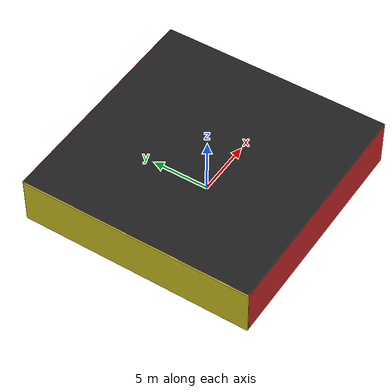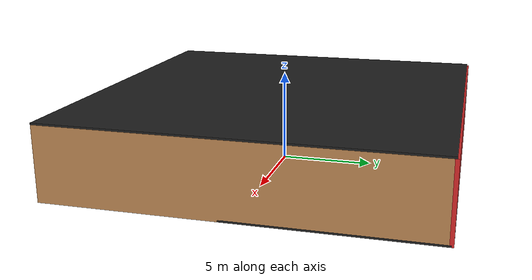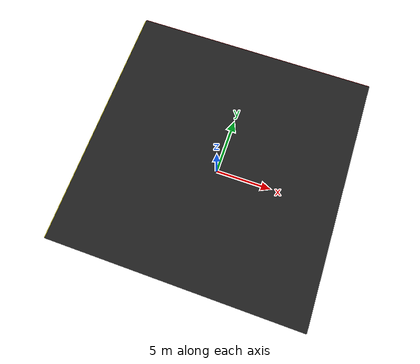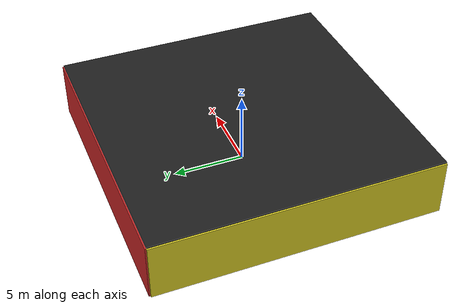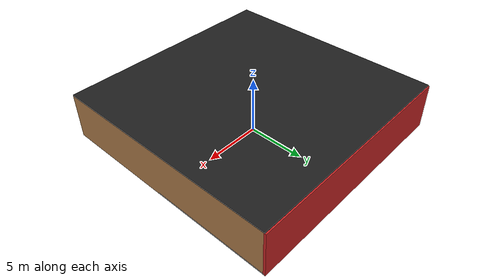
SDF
<sdf version="1.4">
 <world name="default">
  <physics type="ode">
   <max_step_size>0.001</max_step_size>
   <real_time_factor>1</real_time_factor>
   <real_time_update_rate>1000</real_time_update_rate>
   <gravity>0 0 -9.8</gravity>
  </physics>
  <scene><ambient>0.4 0.4 0.4 1</ambient><background>0.7 0.7 0.7 1</background><shadows>1</shadows></scene>
  <model name="Surrounding">
   <static>1</static>
   <link name="Ceiling">
    <collision name="Ceiling_Collision"><geometry><box><size>20 20 0.1</size></box></geometry></collision>
    <visual name="Ceiling_Visual">
     <geometry><box><size>20 20 0.1</size></box></geometry>
     <material>
      <script><uri>file://media/materials/scripts/gazebo.material</uri><name>Gazebo/Black</name></script>
     </material>
    </visual>
    <pose>0 0 4.05 0 0 0</pose>
   </link>
   <link name="Wall_South">
    <collision name="Wall_South_Collision">
     <geometry><box><size>20 0 4</size></box></geometry>
     <pose>0 0 2 0 -0 0</pose>
    </collision>
    <visual name="Wall_South_Visual">
     <pose>0 0 2 0 -0 0</pose>
     <geometry><box><size>20 0 4</size></box></geometry>
     <material>
      <script><uri>file://media/materials/scripts/gazebo.material</uri><name>Gazebo/RedBright</name></script>
     </material>
    </visual>
    <velocity_decay><linear>0</linear><angular>0</angular></velocity_decay>
    <pose>0 -10 0 0 -0 0</pose>
   </link>
   <link name="Wall_East">
    <collision name="Wall_21_Collision">
     <geometry><box><size>20 0 4</size></box></geometry>
     <pose>0 0 2 0 -0 0</pose>
    </collision>
    <visual name="Wall_21_Visual">
     <pose>0 0 2 0 -0 0</pose>
     <geometry><box><size>20 0 4</size></box></geometry>
     <material>
      <script><uri>file://media/materials/scripts/gazebo.material</uri><name>Gazebo/WoodPallet</name></script>
     </material>
    </visual>
    <velocity_decay><linear>0</linear><angular>0</angular></velocity_decay>
    <pose>10 0 0 0 -0 1.5708</pose>
   </link>
   <link name="Wall_North">
    <collision name="Wall_22_Collision">
     <geometry><box><size>20 0.2 4</size></box></geometry>
     <pose>0 0 2 0 -0 0</pose>
    </collision>
    <visual name="Wall_22_Visual">
     <pose>0 0 2 0 -0 0</pose>
     <geometry><box><size>20 0.2 4</size></box></geometry>
     <material>
      <script><uri>file://media/materials/scripts/gazebo.material</uri><name>Gazebo/Red</name></script>
     </material>
    </visual>
    <velocity_decay><linear>0</linear><angular>0</angular></velocity_decay>
    <pose>0 10 0 0 -0 0</pose>
   </link>
   <link name="Wall_West">
    <collision name="Wall_23_Collision">
     <geometry><box><size>20 0.2 4</size></box></geometry>
     <pose>0 0 2 0 -0 0</pose>
    </collision>
    <visual name="Wall_23_Visual">
     <pose>0 0 2 0 -0 0</pose>
     <geometry><box><size>20 0.2 4</size></box></geometry>
     <material>
      <script><uri>file://media/materials/scripts/gazebo.material</uri><name>Gazebo/YellowGlow</name></script>
     </material>
    </visual>
    <velocity_decay><linear>0</linear><angular>0</angular></velocity_decay>
    <pose>-10 0 0 0 0 -1.5708</pose>
   </link>
   <link name="Ground_link">
    <collision name="collision">
     <pose>0 0 .05 0 -0 0</pose>
     <geometry><box><size>20 20 0.1</size></box></geometry>
    </collision>
    <visual name="visual">
     <pose>0 0 .05 0 -0 0</pose>
     <geometry><box><size>20 20 0.1</size></box></geometry>
     <material>
      <script><uri>file://media/materials/scripts/gazebo.material</uri><name>Gazebo/FlatBlack</name></script>
     </material>
    </visual>
   </link>
   <static>1</static>
  </model>
  <spherical_coordinates>
   <surface_model>EARTH_WGS84</surface_model>
   <latitude_deg>0</latitude_deg>
   <longitude_deg>0</longitude_deg>
   <elevation>0</elevation>
   <heading_deg>0</heading_deg>
  </spherical_coordinates>
  <light name="lightball_0" type="diffuse">
   <diffuse>0.8 0.8 0.8 1</diffuse>
   <specular>0.2 0.2 0.2 1</specular>
   <attenuation>
    <range>100</range>
    <constant>0.7</constant>
    <linear>0.01</linear>
    <quadratic>0.001</quadratic>
   </attenuation>
   <direction>-0.5 0.1 -0.9</direction>
   <pose>3.45730732843 9.93130286578 2.26581746929 0 0 0</pose>
  </light>
  <light name="lightball_1" type="diffuse">
   <diffuse>0.8 0.8 0.8 1</diffuse>
   <specular>0.2 0.2 0.2 1</specular>
   <attenuation>
    <range>100</range>
    <constant>0.7</constant>
    <linear>0.01</linear>
    <quadratic>0.001</quadratic>
   </attenuation>
   <direction>-0.5 0.1 -0.9</direction>
   <pose>2.98170413475 3.74658145644 2.33217303018 0 0 0</pose>
  </light>
  <light name="lightball_2" type="diffuse">
   <diffuse>0.8 0.8 0.8 1</diffuse>
   <specular>0.2 0.2 0.2 1</specular>
   <attenuation>
    <range>100</range>
    <constant>0.7</constant>
    <linear>0.01</linear>
    <quadratic>0.001</quadratic>
   </attenuation>
   <direction>-0.5 0.1 -0.9</direction>
   <pose>-6.26734065523 3.34121659946 1.12562317553 0 0 0</pose>
  </light>
  <light name="lightball_3" type="diffuse">
   <diffuse>0.8 0.8 0.8 1</diffuse>
   <specular>0.2 0.2 0.2 1</specular>
   <attenuation>
    <range>100</range>
    <constant>0.7</constant>
    <linear>0.01</linear>
    <quadratic>0.001</quadratic>
   </attenuation>
   <direction>-0.5 0.1 -0.9</direction>
   <pose>9.94540846969 -4.74991918328 1.12899844204 0 0 0</pose>
  </light>
  <light name="lightball_4" type="diffuse">
   <diffuse>0.8 0.8 0.8 1</diffuse>
   <specular>0.2 0.2 0.2 1</specular>
   <attenuation>
    <range>100</range>
    <constant>0.7</constant>
    <linear>0.01</linear>
    <quadratic>0.001</quadratic>
   </attenuation>
   <direction>-0.5 0.1 -0.9</direction>
   <pose>8.26779837861 6.13522759544 3.80140104424 0 0 0</pose>
  </light>
  <light name="lightball_5" type="diffuse">
   <diffuse>0.8 0.8 0.8 1</diffuse>
   <specular>0.2 0.2 0.2 1</specular>
   <attenuation>
    <range>100</range>
    <constant>0.7</constant>
    <linear>0.01</linear>
    <quadratic>0.001</quadratic>
   </attenuation>
   <direction>-0.5 0.1 -0.9</direction>
   <pose>-6.66774059203 5.37168570353 2.92972197482 0 0 0</pose>
  </light>
  <include><uri>model://cabinet</uri><pose>-7.26673327405 -7.64912603454 0 0 0 0.199404284374</pose></include>
  <include>
   <uri>model://robocup_3Dsim_goal</uri>
   <pose>-4.25913313795 -1.8919771603 0 0 0 2.90931945264</pose>
  </include>
  <include><uri>model://cabinet</uri><pose>4.19303958363 8.07399119632 0 0 0 2.53679130036</pose></include>
 </world>
</sdf>

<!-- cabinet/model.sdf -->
<sdf version="1.5">
  <model name="cabinet">
    <static>true</static>
    <link name="cabinet_bottom_plate">
      <inertial>
        <pose>0 0 -1 0 0 0</pose>
        <inertia>
          <ixx>2.050000</ixx>
          <ixy>0</ixy>
          <ixz>0</ixz>
          <iyy>2.050000</iyy>
          <iyz>0</iyz>
          <izz>2.050000</izz>
        </inertia>
        <mass>25.000000</mass>
      </inertial>
      <collision name="cabinet_bottom_plate_geom">
        <pose>0 0 0.010000 0 0 0</pose>
        <geometry>
          <box>
            <size>0.450000 0.450000 0.020000</size>
          </box>
        </geometry>
      </collision>
      <visual name="cabinet_bottom_plate_geom_visual">
        <pose>0 0 0.010000 0 0 0</pose>
        <geometry>
          <box>
            <size>0.450000 0.450000 0.020000</size>
          </box>
        </geometry>
        <material>
          <script>
            <uri>model://media/materials/scripts/gazebo.material</uri>
            <name>Gazebo/Wood</name>
          </script>
        </material>
      </visual>
      <collision name="cabinet_bottom_plate_geom_cabinet_back_plate">
        <pose>0.235000 0 0.510000 0 0 0</pose>
        <geometry>
          <box>
            <size>0.020000 0.450000 1.020000</size>
          </box>
        </geometry>
      </collision>
      <visual name="cabinet_bottom_plate_geom_cabinet_back_plate_visual">
        <pose>0.235000 0 0.510000 0 0 0</pose>
        <geometry>
          <box>
            <size>0.020000 0.450000 1.020000</size>
          </box>
        </geometry>
        <material>
          <script>
            <uri>model://media/materials/scripts/gazebo.material</uri>
            <name>Gazebo/Wood</name>
          </script>
        </material>
      </visual>
      <collision name="cabinet_bottom_plate_geom_cabinet_left_plate">
        <pose>0 0.235000 0.510000 0 0 0</pose>
        <geometry>
          <box>
            <size>0.450000 0.020000 1.020000</size>
          </box>
        </geometry>
      </collision>
      <visual name="cabinet_bottom_plate_geom_cabinet_left_plate_visual">
        <pose>0 0.235000 0.510000 0 0 0</pose>
        <geometry>
          <box>
            <size>0.450000 0.020000 1.020000</size>
          </box>
        </geometry>
        <material>
          <script>
            <uri>model://media/materials/scripts/gazebo.material</uri>
            <name>Gazebo/Wood</name>
          </script>
        </material>
      </visual>
      <collision name="cabinet_bottom_plate_geom_cabinet_middle_plate">
        <pose>0 0 0.510000 0 0 0</pose>
        <geometry>
          <box>
            <size>0.450000 0.450000 0.020000</size>
          </box>
        </geometry>
      </collision>
      <visual name="cabinet_bottom_plate_geom_cabinet_middle_plate_visual">
        <pose>0 0 0.510000 0 0 0</pose>
        <geometry>
          <box>
            <size>0.450000 0.450000 0.020000</size>
          </box>
        </geometry>
        <material>
          <script>
            <uri>model://media/materials/scripts/gazebo.material</uri>
            <name>Gazebo/Wood</name>
          </script>
        </material>
      </visual>
      <collision name="cabinet_bottom_plate_geom_cabinet_right_plate">
        <pose>0 -0.235000 0.510000 0 0 0</pose>
        <geometry>
          <box>
            <size>0.450000 0.020000 1.020000</size>
          </box>
        </geometry>
      </collision>
      <visual name="cabinet_bottom_plate_geom_cabinet_right_plate_visual">
        <pose>0 -0.235000 0.510000 0 0 0</pose>
        <geometry>
          <box>
            <size>0.450000 0.020000 1.020000</size>
          </box>
        </geometry>
        <material>
          <script>
            <uri>model://media/materials/scripts/gazebo.material</uri>
            <name>Gazebo/Wood</name>
          </script>
        </material>
      </visual>
      <collision name="cabinet_bottom_plate_geom_cabinet_top_plate">
        <pose>0 0 1.010000 0 0 0</pose>
        <geometry>
          <box>
            <size>0.450000 0.450000 0.020000</size>
          </box>
        </geometry>
      </collision>
      <visual name="cabinet_bottom_plate_geom_cabinet_top_plate_visual">
        <pose>0 0 1.010000 0 0 0</pose>
        <geometry>
          <box>
            <size>0.450000 0.450000 0.020000</size>
          </box>
        </geometry>
        <material>
          <script>
            <uri>model://media/materials/scripts/gazebo.material</uri>
            <name>Gazebo/Wood</name>
          </script>
        </material>
      </visual>
    </link>
  </model>
</sdf>

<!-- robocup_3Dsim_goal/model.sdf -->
<sdf version="1.5">
  <model name="robocup_3d_goal">
    <static>true</static>
    <link name="left_post">
      <pose>0 1.05 0.45 0 0 0</pose>
      <collision name="collision">
        <geometry>
          <cylinder>
            <radius>0.05</radius>
            <length>0.9</length>
          </cylinder>
        </geometry>
      </collision>
      <visual name="visual">
        <geometry>
          <cylinder>
            <radius>0.05</radius>
            <length>0.9</length>
          </cylinder>
        </geometry>
        <material>
          <script>
            <uri>file://media/materials/scripts/gazebo.material</uri>
            <name>Gazebo/ZincYellow</name>
          </script>
        </material>
      </visual>
    </link>
    <link name="left_support_horiz_lower">
      <pose>0.30 1.05 0.01 0 0 0</pose>
      <collision name="collision">
        <geometry>
          <box>
            <size>0.50 0.02 0.02</size>
          </box>
        </geometry>
      </collision>
      <visual name="visual">
        <geometry>
          <box>
            <size>0.50 0.02 0.02</size>
          </box>
        </geometry>
        <material>
          <script>
            <uri>file://media/materials/scripts/gazebo.material</uri>
            <name>Gazebo/White</name>
          </script>
        </material>
      </visual>
    </link>
    <link name="left_support_horiz_upper">
      <pose>0.30 1.05 0.79 0 0 0</pose>
      <collision name="collision">
        <geometry>
          <box>
            <size>0.50 0.02 0.02</size>
          </box>
        </geometry>
      </collision>
      <visual name="visual">
        <geometry>
          <box>
            <size>0.50 0.02 0.02</size>
          </box>
        </geometry>
        <material>
          <script>
            <uri>file://media/materials/scripts/gazebo.material</uri>
            <name>Gazebo/White</name>
          </script>
        </material>
      </visual>
    </link>
    <link name="left_support_vertical">
      <pose>0.56 1.05 0.4 0 1.5708 0</pose>
      <collision name="collision">
        <geometry>
          <box>
            <size>0.80 0.02 0.02</size>
          </box>
        </geometry>
      </collision>
      <visual name="visual">
        <geometry>
          <box>
            <size>0.80 0.02 0.02</size>
          </box>
        </geometry>
        <material>
          <script>
            <uri>file://media/materials/scripts/gazebo.material</uri>
            <name>Gazebo/White</name>
          </script>
        </material>
      </visual>
    </link>
    <link name="right_support_horiz_lower">
      <pose>0.30 -1.05 0.01 0 0 0</pose>
      <collision name="collision">
        <geometry>
          <box>
            <size>0.50 0.02 0.02</size>
          </box>
        </geometry>
      </collision>
      <visual name="visual">
        <geometry>
          <box>
            <size>0.50 0.02 0.02</size>
          </box>
        </geometry>
        <material>
          <script>
            <uri>file://media/materials/scripts/gazebo.material</uri>
            <name>Gazebo/White</name>
          </script>
        </material>
      </visual>
    </link>
    <link name="right_support_horiz_upper">
      <pose>0.30 -1.05 0.79 0 0 0</pose>
      <collision name="collision">
        <geometry>
          <box>
            <size>0.50 0.02 0.02</size>
          </box>
        </geometry>
      </collision>
      <visual name="visual">
        <geometry>
          <box>
            <size>0.50 0.02 0.02</size>
          </box>
        </geometry>
        <material>
          <script>
            <uri>file://media/materials/scripts/gazebo.material</uri>
            <name>Gazebo/White</name>
          </script>
        </material>
      </visual>
    </link>
    <link name="right_support_vertical">
      <pose>0.56 -1.05 0.4 0 1.5708 0</pose>
      <collision name="collision">
        <geometry>
          <box>
            <size>0.80 0.02 0.02</size>
          </box>
        </geometry>
      </collision>
      <visual name="visual">
        <geometry>
          <box>
            <size>0.80 0.02 0.02</size>
          </box>
        </geometry>
        <material>
          <script>
            <uri>file://media/materials/scripts/gazebo.material</uri>
            <name>Gazebo/White</name>
          </script>
        </material>
      </visual>
    </link>
    <link name="center_support_horiz_lower">
      <pose>0.56 0 0.01 0 1.5708 0</pose>
      <collision name="collision">
        <geometry>
          <box>
            <size>0.02 2.08 0.02</size>
          </box>
        </geometry>
      </collision>
      <visual name="visual">
        <geometry>
          <box>
            <size>0.02 2.08 0.02</size>
          </box>
        </geometry>
        <material>
          <script>
            <uri>file://media/materials/scripts/gazebo.material</uri>
            <name>Gazebo/White</name>
          </script>
        </material>
      </visual>
    </link>
    <link name="center_support_horiz_upper">
      <pose>0.56 0 0.79 0 1.5708 0</pose>
      <collision name="collision">
        <geometry>
          <box>
            <size>0.02 2.08 0.02</size>
          </box>
        </geometry>
      </collision>
      <visual name="visual">
        <geometry>
          <box>
            <size>0.02 2.08 0.02</size>
          </box>
        </geometry>
        <material>
          <script>
            <uri>file://media/materials/scripts/gazebo.material</uri>
            <name>Gazebo/White</name>
          </script>
        </material>
      </visual>
    </link>
    <link name="right_post">
      <pose>0 -1.05 0.45 0 0 0</pose>
      <collision name="collision">
        <geometry>
          <cylinder>
            <radius>0.05</radius>
            <length>0.9</length>
          </cylinder>
        </geometry>
      </collision>
      <visual name="visual">
        <geometry>
          <cylinder>
            <radius>0.05</radius>
            <length>0.9</length>
          </cylinder>
        </geometry>
        <material>
          <script>
            <uri>file://media/materials/scripts/gazebo.material</uri>
            <name>Gazebo/ZincYellow</name>
          </script>
        </material>
      </visual>
    </link>
    <link name="crossbar">
      <pose>0 0 0.85 1.57 1.57 0</pose>
      <collision name="collision">
        <geometry>
          <cylinder>
            <radius>0.05</radius>
            <length>2.0</length>
          </cylinder>
        </geometry>
      </collision>
      <visual name="visual">
        <geometry>
          <cylinder>
            <radius>0.05</radius>
            <length>2.0</length>
          </cylinder>
        </geometry>
        <material>
          <script>
            <uri>file://media/materials/scripts/gazebo.material</uri>
            <name>Gazebo/ZincYellow</name>
          </script>
        </material>
      </visual>
    </link>
    <link name="center_net">
      <pose>0.56 0 0.40 0 0 0</pose>
      <collision name="collision">
        <geometry>
          <box>
            <size>0.01 2.1 0.80</size>
          </box>
        </geometry>
      </collision>
      <visual name="visual">
        <geometry>
          <box>
            <size>0.01 2.1 0.80</size>
          </box>
        </geometry>
        <material>
          <script>
            <uri>model://../model_source/models/robocup09_spl_field/materials/scripts/</uri>
            <uri>model://../model_source/models/robocup09_spl_field/materials/textures/</uri>
            <name>RoboCup/Net</name>
          </script>
        </material>
      </visual>
    </link>
    <link name="left_net">
      <pose>0.30 1.05 0.40 0 0 0</pose>
      <collision name="collision">
        <geometry>
          <box>
            <size>0.50 0.01 0.76</size>
          </box>
        </geometry>
      </collision>
      <visual name="visual">
        <geometry>
          <box>
            <size>0.50 0.01 0.76</size>
          </box>
        </geometry>
        <material>
          <script>
            <uri>model://../model_source/models/robocup09_spl_field/materials/scripts/</uri>
            <uri>model://../model_source/models/robocup09_spl_field/materials/textures/</uri>
            <name>RoboCup/Net</name>
          </script>
        </material>
      </visual>
    </link>
    <link name="right_net">
      <pose>0.30 -1.05 0.40 0 0 0</pose>
      <collision name="collision">
        <geometry>
          <box>
            <size>0.50 0.01 0.76</size>
          </box>
        </geometry>
      </collision>
      <visual name="visual">
        <geometry>
          <box>
            <size>0.50 0.01 0.76</size>
          </box>
        </geometry>
        <material>
          <script>
            <uri>model://../model_source/models/robocup09_spl_field/materials/scripts/</uri>
            <uri>model://../model_source/models/robocup09_spl_field/materials/textures/</uri>
            <name>RoboCup/Net</name>
          </script>
        </material>
      </visual>
    </link>
  </model>
</sdf>
